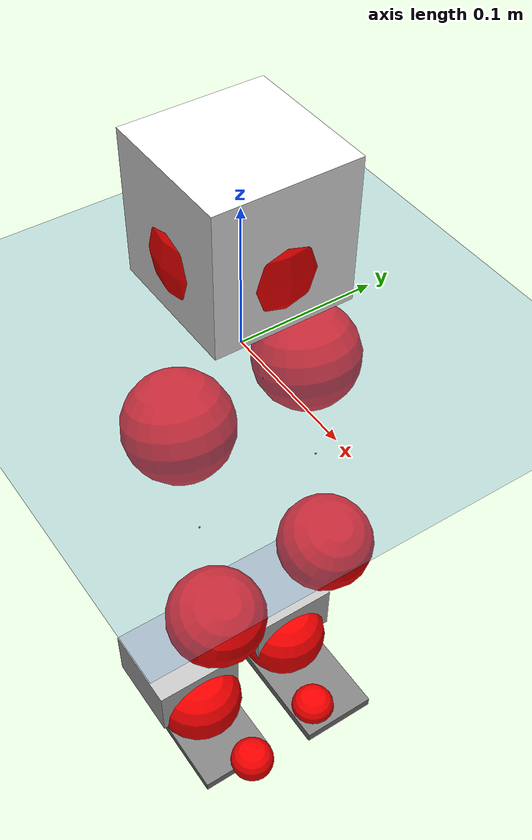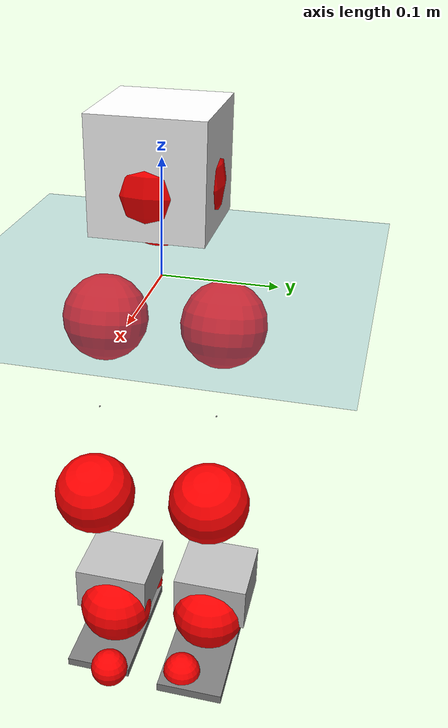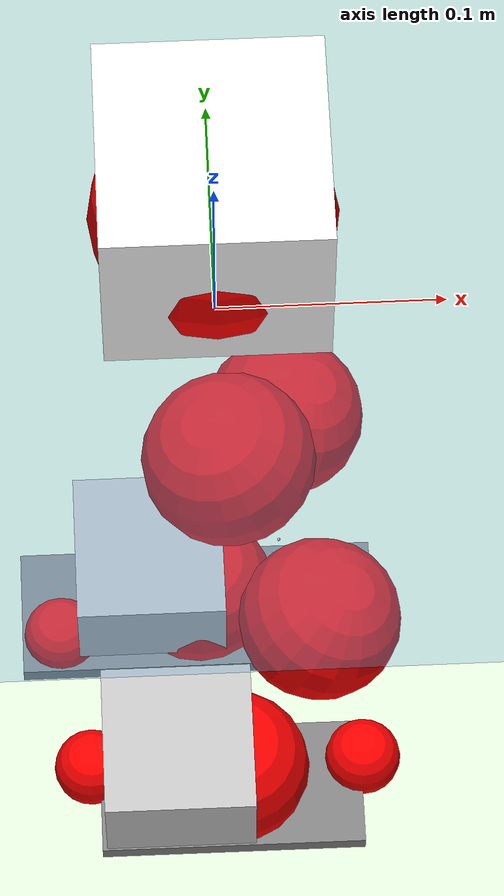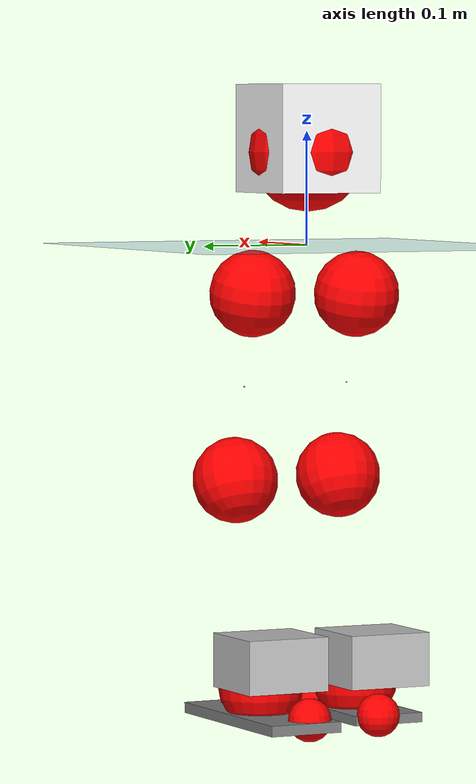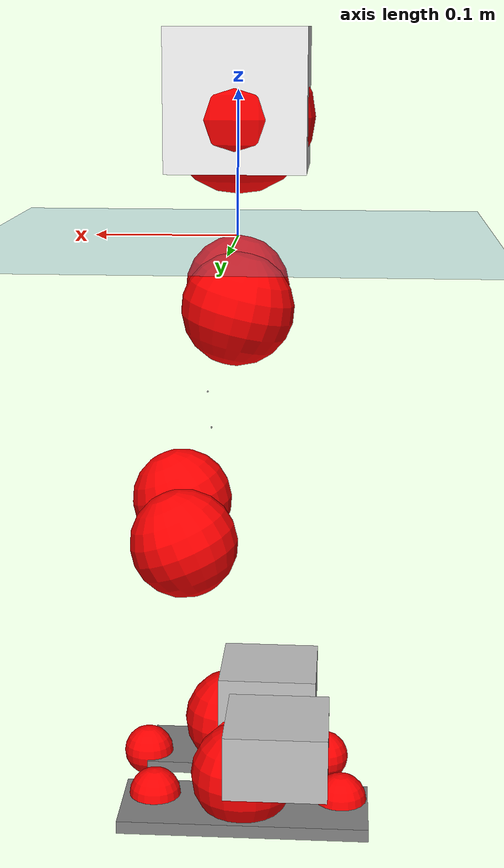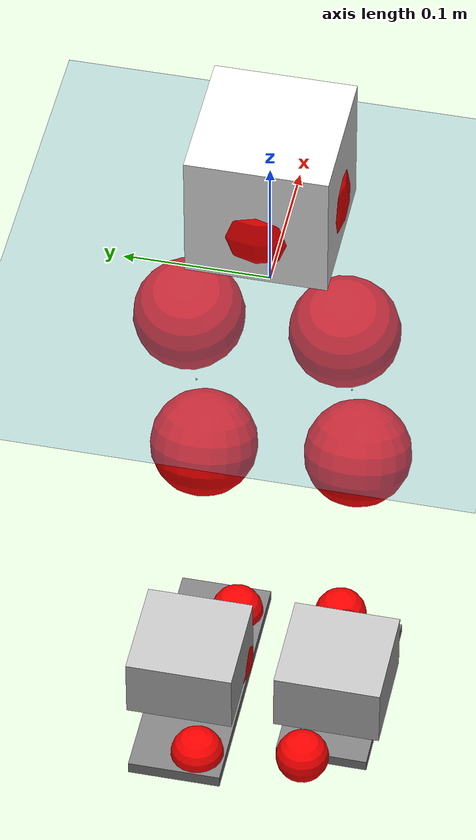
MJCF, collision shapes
<mujoco model="pi_12dof_release_v1">
  <compiler angle="radian" assetdir="assets" balanceinertia="true" inertiafromgeom="false"/>

  <option timestep="0.005" density="1.2" viscosity="2e-05"/>

  <size nkey="1"/>

  <visual>
    <quality shadowsize="8192"/>
    <map shadowclip="0.5"/>
  </visual>

  <default>
    <default class="/">
      <joint armature="0.01" damping="0.01" frictionloss="0.01"/>
      <geom contype="0" conaffinity="0" group="1" solref="-1000 -80"/>
      <site size="0.01 0.005 0.005" group="5"/>
      <general forcelimited="true" biastype="affine" gainprm="20" biasprm="0 -20 -0.5"/>
      <default class="foot">
        <geom size="0.0845 0.036 0.005" type="box" condim="6" group="4" priority="1" friction="0.9 0.2 0.2" solimp="0.015 1 0.005"/>
      </default>
      <default class="reward_collision_sphere">
        <geom group="5" rgba="1 0 0 1"/>
      </default>
    </default>
  </default>

  <asset>
    <texture type="skybox" colorspace="auto" name="//unnamed_texture_0" builtin="gradient" rgb1="0.95 0.95 0.95" rgb2="0.95 0.95 0.95" width="100" height="600"/>
    <texture type="2d" colorspace="auto" name="texplane" builtin="checker" rgb1="0.345 0.575 0.748" rgb2="0.345 0.575 0.748" markrgb="1 1 1" width="512" height="512"/>
    <material name="MatPlane" class="/" texture="texplane" texuniform="true" texrepeat="2 2" specular="0.9"/>
    <mesh name="baselink_1" class="/" file="baselink_1.STL"/>
    <mesh name="r_hip_pitch_link" class="/" file="r_hip_pitch_link.STL"/>
    <mesh name="r_hip_roll_link" class="/" file="r_hip_roll_link.STL"/>
    <mesh name="r_thigh_link" class="/" file="r_thigh_link.STL"/>
    <mesh name="r_calf_link" class="/" file="r_calf_link.STL"/>
    <mesh name="r_ankle_pitch_link" class="/" file="r_ankle_pitch_link.STL"/>
    <mesh name="r_ankle_roll_link" class="/" file="r_ankle_roll_link.STL"/>
    <mesh name="l_hip_pitch_link" class="/" file="l_hip_pitch_link.STL"/>
    <mesh name="l_hip_roll_link" class="/" file="l_hip_roll_link.STL"/>
    <mesh name="l_thigh_link" class="/" file="l_thigh_link.STL"/>
    <mesh name="l_calf_link" class="/" file="l_calf_link.STL"/>
    <mesh name="l_ankle_pitch_link" class="/" file="l_ankle_pitch_link.STL"/>
    <mesh name="l_ankle_roll_link" class="/" file="l_ankle_roll_link.STL"/>
  </asset>

  <worldbody>
    <geom name="floor" class="/" size="100 100 0.125" type="plane" group="0" material="MatPlane"/>
    <light name="toplight_shadow" class="/" pos="0 0 5" dir="0.0990148 0.0990148 -0.990148" type="directional" ambient="0.04 0.04 0.04" diffuse="0.55 0.55 0.55" specular="0.12 0.12 0.12"/>
    <light name="toplight_fill" class="/" pos="0 0 5" dir="0.0990148 0.0990148 -0.990148" type="directional" castshadow="false" ambient="0.04 0.04 0.04" diffuse="0.3 0.3 0.3" specular="0.08 0.08 0.08"/>
    <body name="trunk" pos="-0.000456574 -0.0004896 -0.00222823" quat="1 -3.60332e-05 3.29125e-05 -2.44608e-05">
      <inertial pos="0.000767565 -0.00106915 0.0514556" quat="0.701219 0.0164175 0.00299467 0.712751" mass="1.90818" diaginertia="0.0111749 0.000976333 0.0106485"/>
      <joint name="//unnamed_joint_0" type="free"/>
      <geom name="//unnamed_geom_1" class="/" type="mesh" density="0" rgba="1 1 1 1" mesh="baselink_1"/>
      <geom name="//unnamed_geom_2" class="/" size="0.0476947 0.0476947 0.0476947" pos="0 0 0.0962894" type="box" rgba="1 1 1 1"/>
      <geom name="//unnamed_geom_3" class="reward_collision_sphere" size="0.0524642" pos="0 0 0.0842533"/>
      <site name="imu" class="/" pos="0.00343319 -0.00167803 0.00412765" size="0.00953894"/>
      <camera name="track" class="/" pos="0 -1.27991 0" quat="0.707107 0.707107 0 0" mode="trackcom"/>
      <camera name="ego_camera" class="/" pos="0.0763579 0 0.216651" quat="-0.5 -0.5 0.5 0.5"/>
      <body name="r_hip_pitch_link" pos="0.00246284 -0.0161883 -0.0400164" quat="0.992056 0.000626279 -0.125796 -0.000404435">
        <inertial pos="0.00164385 -0.0389909 0.00074271" quat="-0.0250654 0.713851 -0.0252025 0.699395" mass="0.323222" diaginertia="0.000119911 1.07282e-05 0.000218765"/>
        <joint name="r_hip_pitch_joint" class="/" pos="0 0 0" axis="-0.00129845 -0.999991 0.00395715" range="-1.7521 1.24614" armature="0.00820513" damping="0.0127787" frictionloss="0.00834742"/>
        <geom name="//unnamed_geom_4" class="/" type="mesh" density="0" rgba="0.75294 0.75294 0.75294 1" mesh="r_hip_pitch_link"/>
        <geom name="//unnamed_geom_5" class="/" size="0.000476947 0.000476947 0.000476947" type="box" rgba="0.75294 0.75294 0.75294 1"/>
        <body name="r_hip_roll_link" pos="0.00118739 -0.0340117 -0.00207828" quat="1 1.54382e-05 5.38027e-05 1.52511e-05">
          <inertial pos="0.00172123 -9.08001e-05 -0.0728768" quat="0.706038 -0.0740833 -0.0737699 0.700414" mass="0.344641" diaginertia="0.000359926 2.95348e-05 0.000317621"/>
          <joint name="r_hip_roll_joint" class="/" pos="0 0 0" axis="-0.999993 -0.000246525 0.00361401" range="-0.133013 0.545545" armature="0.00807589" damping="0.00526632" frictionloss="0.010493"/>
          <geom name="//unnamed_geom_6" class="/" type="mesh" density="0" rgba="0.75294 0.75294 0.75294 1" mesh="r_hip_roll_link"/>
          <geom name="//unnamed_geom_7" class="/" size="0.000476947 0.000476947 0.000476947" type="box" rgba="0.75294 0.75294 0.75294 1"/>
          <geom name="//unnamed_geom_8" class="reward_collision_sphere" size="0.0381557"/>
          <body name="r_thigh_link" pos="0.00185037 -0.00141839 -0.0828549" quat="1 0.000456495 -5.63251e-06 -0.000422901">
            <inertial pos="-0.000680211 -0.000606647 -0.0591218" quat="0.733063 0.680125 -0.00172713 -0.00680844" mass="0.0956405" diaginertia="0.000131788 1.01552e-05 0.00013875"/>
            <joint name="r_thigh_joint" class="/" pos="0 0 0" axis="-0.0135959 0.00403768 -0.999899" stiffness="0.00891582" range="-0.251934 0.635652" armature="0.00985953" damping="0.00818503" frictionloss="0.00987336"/>
            <geom name="//unnamed_geom_9" class="/" type="mesh" density="0" rgba="0.75294 0.75294 0.75294 1" mesh="r_thigh_link"/>
            <geom name="//unnamed_geom_10" class="/" size="0.000476947 0.000476947 0.000476947" type="box" rgba="0.75294 0.75294 0.75294 1"/>
            <body name="r_calf_link" pos="-0.00184707 -0.00148816 -0.0867483" quat="0.94757 -0.000525608 0.319549 -0.000466979">
              <inertial pos="0.000513299 -8.85245e-05 -0.0847074" quat="0.999969 -0.00421365 0.00275562 0.0061327" mass="0.712368" diaginertia="0.00383631 0.000400619 0.000455731"/>
              <joint name="r_calf_joint" class="/" pos="0 0 0" axis="0.00739229 -0.999965 -0.0039269" range="-1.63638 0.702598" armature="0.00840012" damping="0.0195504" frictionloss="0.00820727"/>
              <geom name="//unnamed_geom_11" class="/" type="mesh" density="0" rgba="0.75294 0.75294 0.75294 1" mesh="r_calf_link"/>
              <geom name="//unnamed_geom_12" class="/" size="0.000476947 0.000476947 0.000476947" type="box" rgba="0.75294 0.75294 0.75294 1"/>
              <geom name="//unnamed_geom_13" class="reward_collision_sphere" size="0.0381557"/>
              <body name="r_ankle_pitch_link" pos="-0.00141637 -0.00037316 -0.171143" quat="0.98008 -9.37381e-05 -0.198602 7.78173e-05">
                <inertial pos="0.00494526 0.00296165 0.000259633" quat="0.00659013 0.706151 -0.00459637 0.708015" mass="0.149049" diaginertia="0.000327273 2.39935e-05 0.000306096"/>
                <joint name="r_ankle_pitch_joint" class="/" pos="0 0 0" axis="0.00676301 -0.99995 -0.00732293" range="-1.33575 0.525461" armature="0.00894652" damping="0.00295866" frictionloss="0.00940552"/>
                <geom name="//unnamed_geom_14" class="/" type="mesh" density="0" rgba="0.75294 0.75294 0.75294 1" mesh="r_ankle_pitch_link"/>
                <geom name="//unnamed_geom_15" class="/" size="0.0372019 0.0381557 0.0238473" type="box" rgba="0.75294 0.75294 0.75294 1"/>
                <body name="r_ankle_roll_link" pos="0.0783678 0.00278618 0.00197678" quat="1 7.72658e-05 0.000192774 3.47568e-05">
                  <inertial pos="-0.0242831 0.000717967 -0.0171276" quat="0.555146 0.422701 0.43587 0.568467" mass="0.445251" diaginertia="0.00123995 0.000108101 0.000704621"/>
                  <joint name="r_ankle_roll_joint" class="/" pos="0 0 0" axis="-0.999991 0.00421859 -0.000440782" range="-0.199712 0.207584" armature="0.0108019" damping="0.00197552" frictionloss="0.0100426"/>
                  <geom name="//unnamed_geom_16" class="/" type="mesh" density="0" rgba="0.75294 0.75294 0.75294 1" mesh="r_ankle_roll_link"/>
                  <geom name="//unnamed_geom_17" class="/" type="mesh" rgba="0.75294 0.75294 0.75294 1" mesh="r_ankle_roll_link"/>
                  <geom name="right_foot" class="foot" size="0.0663198 0.03284 0.00429545" pos="-0.0519234 0 -0.0529592"/>
                  <geom name="//unnamed_geom_19" class="reward_collision_sphere" size="0.0381557" pos="-0.0509053 0 -0.0240724"/>
                  <geom name="//unnamed_geom_20" class="reward_collision_sphere" size="0.0190779" pos="0.0152716 0.0127991 -0.0481447"/>
                  <geom name="//unnamed_geom_21" class="reward_collision_sphere" size="0.0190779" pos="-0.122173 0.0127991 -0.0481447"/>
                  <site name="right_foot" class="foot" pos="-0.0519234 0 -0.0529592" size="0.00953894"/>
                </body>
              </body>
            </body>
          </body>
        </body>
      </body>
      <body name="l_hip_pitch_link" pos="-7.51481e-05 0.0178451 -0.0385534" quat="0.992214 0.000797194 -0.124543 0.000213607">
        <inertial pos="0.00391881 0.0350177 -0.00105425" quat="-0.0386015 0.697697 0.0365024 0.714421" mass="0.341356" diaginertia="0.00013406 1.10739e-05 0.000248163"/>
        <joint name="l_hip_pitch_joint" class="/" pos="0 0 0" axis="0.0081294 0.999961 0.00349711" range="-1.2606 1.7784" armature="0.00952764" damping="0.0144658" frictionloss="0.0090738"/>
        <geom name="//unnamed_geom_22" class="/" type="mesh" density="0" rgba="0.75294 0.75294 0.75294 1" mesh="l_hip_pitch_link"/>
        <geom name="//unnamed_geom_23" class="/" size="0.000476947 0.000476947 0.000476947" type="box" rgba="0.75294 0.75294 0.75294 1"/>
        <body name="l_hip_roll_link" pos="-0.00305475 0.0374547 -0.000198431" quat="1 -0.000124933 -9.14655e-05 1.10045e-05">
          <inertial pos="-0.00116655 0.00155512 -0.0746936" quat="0.69736 -0.07511 -0.0767943 0.708626" mass="0.338111" diaginertia="0.000364364 2.88126e-05 0.000333494"/>
          <joint name="l_hip_roll_joint" class="/" pos="0 0 0" axis="-0.999998 0.000860682 -0.00152324" stiffness="0.0023052" range="-0.511445 0.164534" armature="0.00979139" damping="0" frictionloss="0.00914599"/>
          <geom name="//unnamed_geom_24" class="/" type="mesh" density="0" rgba="0.75294 0.75294 0.75294 1" mesh="l_hip_roll_link"/>
          <geom name="//unnamed_geom_25" class="/" size="0.000476947 0.000476947 0.000476947" type="box" rgba="0.75294 0.75294 0.75294 1"/>
          <geom name="//unnamed_geom_26" class="reward_collision_sphere" size="0.0381557"/>
          <body name="l_thigh_link" pos="-0.00304312 -0.000426486 -0.0845606" quat="0.999999 -5.96683e-05 -1.70446e-06 0.00126356">
            <inertial pos="0.000591206 -0.00138773 -0.0560256" quat="0.674724 0.73804 -0.00241745 -0.00621685" mass="0.097837" diaginertia="0.000135357 1.01685e-05 0.000147678"/>
            <joint name="l_thigh_joint" class="/" pos="0 0 0" axis="0.00671774 0.0115421 -0.999911" range="-0.655067 0.34751" armature="0.0108346" damping="0.00195931" frictionloss="0.0107365"/>
            <geom name="//unnamed_geom_27" class="/" type="mesh" density="0" rgba="0.75294 0.75294 0.75294 1" mesh="l_thigh_link"/>
            <geom name="//unnamed_geom_28" class="/" size="0.000476947 0.000476947 0.000476947" type="box" rgba="0.75294 0.75294 0.75294 1"/>
            <body name="l_calf_link" pos="-0.00186789 -0.000493682 -0.0862525" quat="0.947662 -0.000323291 0.319275 -0.00075098">
              <inertial pos="7.01166e-06 0.00239685 -0.0830229" quat="0.999927 -0.00359804 -0.00508256 0.0103692" mass="0.679299" diaginertia="0.00371457 0.000363835 0.000427005"/>
              <joint name="l_calf_joint" class="/" pos="0 0 0" axis="-0.00176598 0.999944 0.0103944" range="-0.599276 1.67972" armature="0.00916077" damping="0.00683731" frictionloss="0.00918623"/>
              <geom name="//unnamed_geom_29" class="/" type="mesh" density="0" rgba="0.75294 0.75294 0.75294 1" mesh="l_calf_link"/>
              <geom name="//unnamed_geom_30" class="/" size="0.000476947 0.000476947 0.000476947" type="box" rgba="0.75294 0.75294 0.75294 1"/>
              <geom name="//unnamed_geom_31" class="reward_collision_sphere" size="0.0381557"/>
              <body name="l_ankle_pitch_link" pos="-0.000838691 -0.00263624 -0.168565" quat="0.980153 5.03881e-05 -0.198244 0.000162885">
                <inertial pos="0.00708627 -0.00258268 0.000545572" quat="-0.00195718 0.707995 0.00198568 0.706212" mass="0.155495" diaginertia="0.000336421 2.38384e-05 0.000312386"/>
                <joint name="l_ankle_pitch_joint" class="/" pos="0 0 0" axis="-0.00862488 0.999955 -0.00403626" stiffness="0.000874128" range="-0.490534 1.31204" armature="0.00967186" damping="0" frictionloss="0.00883992"/>
                <geom name="//unnamed_geom_32" class="/" type="mesh" density="0" rgba="0.75294 0.75294 0.75294 1" mesh="l_ankle_pitch_link"/>
                <geom name="//unnamed_geom_33" class="/" size="0.0372019 0.0381557 0.0238473" type="box" rgba="0.75294 0.75294 0.75294 1"/>
                <body name="l_ankle_roll_link" pos="0.0756418 -0.00227566 0.0013343" quat="0.999999 -0.00112503 0.000673124 -2.21347e-05">
                  <inertial pos="-0.0277423 -0.000823458 -0.0182364" quat="0.560451 0.42938 0.439107 0.55562" mass="0.446631" diaginertia="0.00118659 0.000111715 0.000701152"/>
                  <joint name="l_ankle_roll_joint" class="/" pos="0 0 0" axis="-0.999996 -0.00297469 0.000194067" range="-0.160991 0.150357" armature="0.00843074" damping="0.00825431" frictionloss="0.00964914"/>
                  <geom name="//unnamed_geom_34" class="/" type="mesh" density="0" rgba="0.75294 0.75294 0.75294 1" mesh="l_ankle_roll_link"/>
                  <geom name="//unnamed_geom_35" class="/" type="mesh" rgba="0.75294 0.75294 0.75294 1" mesh="l_ankle_roll_link"/>
                  <geom name="left_foot" class="foot" size="0.0903027 0.0331246 0.00470815" pos="-0.0519234 0 -0.0529592"/>
                  <geom name="//unnamed_geom_37" class="reward_collision_sphere" size="0.0381557" pos="-0.0509053 0 -0.0240724"/>
                  <geom name="//unnamed_geom_38" class="reward_collision_sphere" size="0.0190779" pos="0.0152716 -0.0127991 -0.0481447"/>
                  <geom name="//unnamed_geom_39" class="reward_collision_sphere" size="0.0190779" pos="-0.122173 -0.0127991 -0.0481447"/>
                  <site name="left_foot" class="foot" pos="-0.0519234 0 -0.0529592" size="0.00953894"/>
                </body>
              </body>
            </body>
          </body>
        </body>
      </body>
    </body>
  </worldbody>

  <contact>
    <pair class="/" geom1="floor" geom2="right_foot" name="//unnamed_contact_1"/>
    <pair class="/" geom1="floor" geom2="left_foot" name="//unnamed_contact_0"/>
  </contact>

  <actuator>
    <general name="r_hip_pitch_joint" class="/" joint="r_hip_pitch_joint" forcerange="-22.0036 22.0036" gainprm="18.9648" biasprm="0 -18.9648 -0.486722"/>
    <general name="r_hip_roll_joint" class="/" joint="r_hip_roll_joint" forcerange="-19.0828 19.0828" gainprm="18.9648" biasprm="0 -18.9648 -0.486722"/>
    <general name="r_thigh_joint" class="/" joint="r_thigh_joint" forcerange="-21.4972 21.4972" gainprm="18.9648" biasprm="0 -18.9648 -0.486722"/>
    <general name="r_calf_joint" class="/" joint="r_calf_joint" forcerange="-20.7282 20.7282" gainprm="18.9648" biasprm="0 -18.9648 -0.486722"/>
    <general name="r_ankle_pitch_joint" class="/" joint="r_ankle_pitch_joint" forcerange="-18.9591 18.9591" gainprm="18.9648" biasprm="0 -18.9648 -0.486722"/>
    <general name="r_ankle_roll_joint" class="/" joint="r_ankle_roll_joint" forcerange="-19.6881 19.6881" gainprm="18.9648" biasprm="0 -18.9648 -0.486722"/>
    <general name="l_hip_pitch_joint" class="/" joint="l_hip_pitch_joint" forcerange="-19.6611 19.6611" gainprm="18.9648" biasprm="0 -18.9648 -0.486722"/>
    <general name="l_hip_roll_joint" class="/" joint="l_hip_roll_joint" forcerange="-18.0421 18.0421" gainprm="18.9648" biasprm="0 -18.9648 -0.486722"/>
    <general name="l_thigh_joint" class="/" joint="l_thigh_joint" forcerange="-18.6978 18.6978" gainprm="18.9648" biasprm="0 -18.9648 -0.486722"/>
    <general name="l_calf_joint" class="/" joint="l_calf_joint" forcerange="-18.1146 18.1146" gainprm="18.9648" biasprm="0 -18.9648 -0.486722"/>
    <general name="l_ankle_pitch_joint" class="/" joint="l_ankle_pitch_joint" forcerange="-22.0872 22.0872" gainprm="18.9648" biasprm="0 -18.9648 -0.486722"/>
    <general name="l_ankle_roll_joint" class="/" joint="l_ankle_roll_joint" forcerange="-19.3199 19.3199" gainprm="18.9648" biasprm="0 -18.9648 -0.486722"/>
  </actuator>

  <sensor>
    <gyro site="imu" name="imu_angular_velocity"/>
    <velocimeter site="imu" name="imu_linear_velocity"/>
    <framelinvel objtype="site" objname="left_foot" name="left_foot_global_linear_velocity"/>
    <framelinvel objtype="site" objname="right_foot" name="right_foot_global_linear_velocity"/>
  </sensor>

  <keyframe>
    <key name="home" qpos="0 0 0.291 1 0 0 0 0.4 0 0 -0.8 0.4 0 -0.4 0 0 0.8 -0.4 0"/>
  </keyframe>
</mujoco>
